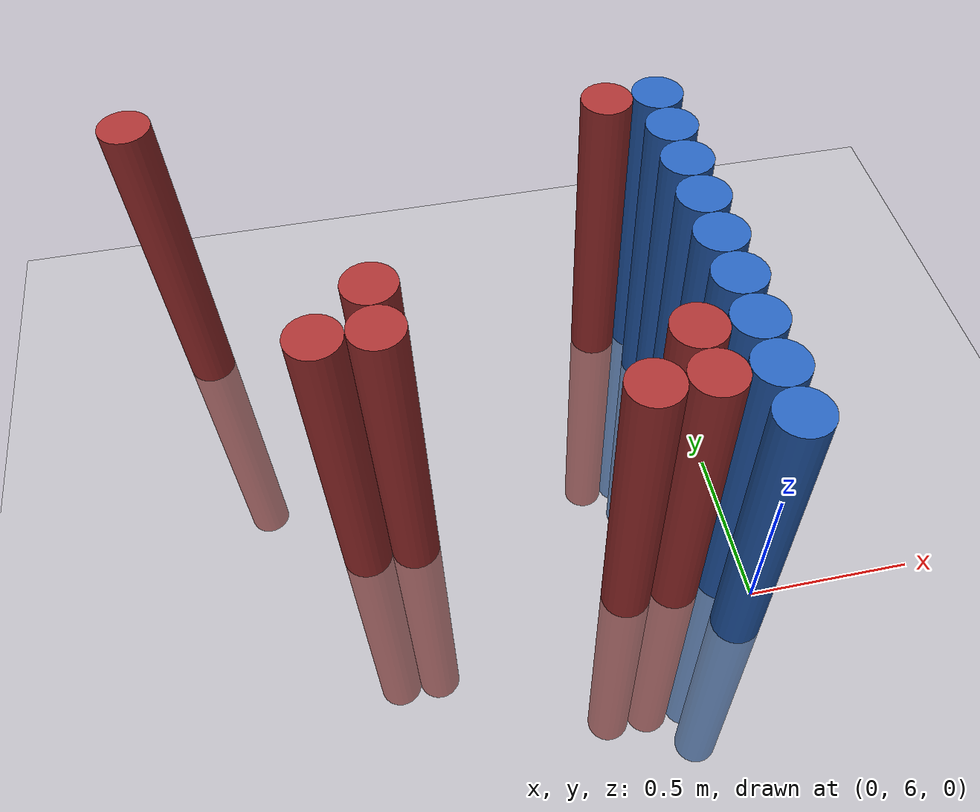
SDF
<sdf version="1.6">
 <world name="default">
  <model name="ground_plane">
   <static>1</static>
   <link name="link">
    <collision name="collision">
     <geometry><plane><normal>0 0 1</normal><size>100 100</size></plane></geometry>
     <surface><friction><ode><mu>100</mu><mu2>50</mu2></ode></friction></surface>
    </collision>
    <visual name="visual">
     <cast_shadows>0</cast_shadows>
     <geometry><plane><normal>0 0 1</normal><size>100 100</size></plane></geometry>
     <material>
      <script><uri>file://media/materials/scripts/gazebo.material</uri><name>Gazebo/Grey</name></script>
     </material>
    </visual>
   </link>
  </model>
  <model name="unit_cylinder_198">
   <static>1</static>
   <pose>-1.575000 7.275000 0.000000 0.000000 0.000000 0.000000</pose>
   <link name="link">
    <inertial>
     <mass>1</mass>
     <inertia><ixx>0.145833</ixx><ixy>0</ixy><ixz>0</ixz><iyy>0.145833</iyy><iyz>0</iyz><izz>0.125</izz></inertia>
    </inertial>
    <collision name="collision">
     <geometry><cylinder><radius>0.075000</radius><length>2</length></cylinder></geometry>
    </collision>
    <visual name="visual">
     <geometry><cylinder><radius>0.075000</radius><length>2</length></cylinder></geometry>
     <material>
      <ambient>0.648000 0.192000 0.192000 1</ambient>
      <diffuse>0.648000 0.192000 0.192000 1</diffuse>
     </material>
     <material>
      <script><name>Gazebo/Grey</name><uri>file://media/materials/scripts/gazebo.material</uri></script>
     </material>
    </visual>
   </link>
  </model>
  <model name="unit_cylinder_207">
   <static>1</static>
   <pose>-1.125000 6.375000 0.000000 0.000000 0.000000 0.000000</pose>
   <link name="link">
    <inertial>
     <mass>1</mass>
     <inertia><ixx>0.145833</ixx><ixy>0</ixy><ixz>0</ixz><iyy>0.145833</iyy><iyz>0</iyz><izz>0.125</izz></inertia>
    </inertial>
    <collision name="collision">
     <geometry><cylinder><radius>0.075000</radius><length>2</length></cylinder></geometry>
    </collision>
    <visual name="visual">
     <geometry><cylinder><radius>0.075000</radius><length>2</length></cylinder></geometry>
     <material>
      <ambient>0.648000 0.192000 0.192000 1</ambient>
      <diffuse>0.648000 0.192000 0.192000 1</diffuse>
     </material>
     <material>
      <script><name>Gazebo/Grey</name><uri>file://media/materials/scripts/gazebo.material</uri></script>
     </material>
    </visual>
   </link>
  </model>
  <model name="unit_cylinder_211">
   <static>1</static>
   <pose>-0.975000 6.375000 0.000000 0.000000 0.000000 0.000000</pose>
   <link name="link">
    <inertial>
     <mass>1</mass>
     <inertia><ixx>0.145833</ixx><ixy>0</ixy><ixz>0</ixz><iyy>0.145833</iyy><iyz>0</iyz><izz>0.125</izz></inertia>
    </inertial>
    <collision name="collision">
     <geometry><cylinder><radius>0.075000</radius><length>2</length></cylinder></geometry>
    </collision>
    <visual name="visual">
     <geometry><cylinder><radius>0.075000</radius><length>2</length></cylinder></geometry>
     <material>
      <ambient>0.648000 0.192000 0.192000 1</ambient>
      <diffuse>0.648000 0.192000 0.192000 1</diffuse>
     </material>
     <material>
      <script><name>Gazebo/Grey</name><uri>file://media/materials/scripts/gazebo.material</uri></script>
     </material>
    </visual>
   </link>
  </model>
  <model name="unit_cylinder_212">
   <static>1</static>
   <pose>-0.975000 6.525000 0.000000 0.000000 0.000000 0.000000</pose>
   <link name="link">
    <inertial>
     <mass>1</mass>
     <inertia><ixx>0.145833</ixx><ixy>0</ixy><ixz>0</ixz><iyy>0.145833</iyy><iyz>0</iyz><izz>0.125</izz></inertia>
    </inertial>
    <collision name="collision">
     <geometry><cylinder><radius>0.075000</radius><length>2</length></cylinder></geometry>
    </collision>
    <visual name="visual">
     <geometry><cylinder><radius>0.075000</radius><length>2</length></cylinder></geometry>
     <material>
      <ambient>0.648000 0.192000 0.192000 1</ambient>
      <diffuse>0.648000 0.192000 0.192000 1</diffuse>
     </material>
     <material>
      <script><name>Gazebo/Grey</name><uri>file://media/materials/scripts/gazebo.material</uri></script>
     </material>
    </visual>
   </link>
  </model>
  <model name="unit_cylinder_227">
   <static>1</static>
   <pose>-0.375000 6.075000 0.000000 0.000000 0.000000 0.000000</pose>
   <link name="link">
    <inertial>
     <mass>1</mass>
     <inertia><ixx>0.145833</ixx><ixy>0</ixy><ixz>0</ixz><iyy>0.145833</iyy><iyz>0</iyz><izz>0.125</izz></inertia>
    </inertial>
    <collision name="collision">
     <geometry><cylinder><radius>0.075000</radius><length>2</length></cylinder></geometry>
    </collision>
    <visual name="visual">
     <geometry><cylinder><radius>0.075000</radius><length>2</length></cylinder></geometry>
     <material>
      <ambient>0.648000 0.192000 0.192000 1</ambient>
      <diffuse>0.648000 0.192000 0.192000 1</diffuse>
     </material>
     <material>
      <script><name>Gazebo/Grey</name><uri>file://media/materials/scripts/gazebo.material</uri></script>
     </material>
    </visual>
   </link>
  </model>
  <model name="unit_cylinder_232">
   <static>1</static>
   <pose>-0.225000 6.075000 0.000000 0.000000 0.000000 0.000000</pose>
   <link name="link">
    <inertial>
     <mass>1</mass>
     <inertia><ixx>0.145833</ixx><ixy>0</ixy><ixz>0</ixz><iyy>0.145833</iyy><iyz>0</iyz><izz>0.125</izz></inertia>
    </inertial>
    <collision name="collision">
     <geometry><cylinder><radius>0.075000</radius><length>2</length></cylinder></geometry>
    </collision>
    <visual name="visual">
     <geometry><cylinder><radius>0.075000</radius><length>2</length></cylinder></geometry>
     <material>
      <ambient>0.648000 0.192000 0.192000 1</ambient>
      <diffuse>0.648000 0.192000 0.192000 1</diffuse>
     </material>
     <material>
      <script><name>Gazebo/Grey</name><uri>file://media/materials/scripts/gazebo.material</uri></script>
     </material>
    </visual>
   </link>
  </model>
  <model name="unit_cylinder_233">
   <static>1</static>
   <pose>-0.225000 6.225000 0.000000 0.000000 0.000000 0.000000</pose>
   <link name="link">
    <inertial>
     <mass>1</mass>
     <inertia><ixx>0.145833</ixx><ixy>0</ixy><ixz>0</ixz><iyy>0.145833</iyy><iyz>0</iyz><izz>0.125</izz></inertia>
    </inertial>
    <collision name="collision">
     <geometry><cylinder><radius>0.075000</radius><length>2</length></cylinder></geometry>
    </collision>
    <visual name="visual">
     <geometry><cylinder><radius>0.075000</radius><length>2</length></cylinder></geometry>
     <material>
      <ambient>0.648000 0.192000 0.192000 1</ambient>
      <diffuse>0.648000 0.192000 0.192000 1</diffuse>
     </material>
     <material>
      <script><name>Gazebo/Grey</name><uri>file://media/materials/scripts/gazebo.material</uri></script>
     </material>
    </visual>
   </link>
  </model>
  <model name="unit_cylinder_234">
   <static>1</static>
   <pose>-0.225000 7.125000 0.000000 0.000000 0.000000 0.000000</pose>
   <link name="link">
    <inertial>
     <mass>1</mass>
     <inertia><ixx>0.145833</ixx><ixy>0</ixy><ixz>0</ixz><iyy>0.145833</iyy><iyz>0</iyz><izz>0.125</izz></inertia>
    </inertial>
    <collision name="collision">
     <geometry><cylinder><radius>0.075000</radius><length>2</length></cylinder></geometry>
    </collision>
    <visual name="visual">
     <geometry><cylinder><radius>0.075000</radius><length>2</length></cylinder></geometry>
     <material>
      <ambient>0.648000 0.192000 0.192000 1</ambient>
      <diffuse>0.648000 0.192000 0.192000 1</diffuse>
     </material>
     <material>
      <script><name>Gazebo/Grey</name><uri>file://media/materials/scripts/gazebo.material</uri></script>
     </material>
    </visual>
   </link>
  </model>
  <model name="unit_cylinder_247">
   <static>1</static>
   <pose>-0.075000 5.925000 0.000000 0.000000 0.000000 0.000000</pose>
   <link name="link">
    <inertial>
     <mass>1</mass>
     <inertia><ixx>0.145833</ixx><ixy>0</ixy><ixz>0</ixz><iyy>0.145833</iyy><iyz>0</iyz><izz>0.125</izz></inertia>
    </inertial>
    <collision name="collision">
     <geometry><cylinder><radius>0.075000</radius><length>2</length></cylinder></geometry>
    </collision>
    <visual name="visual">
     <geometry><cylinder><radius>0.075000</radius><length>2</length></cylinder></geometry>
     <material>
      <ambient>0.152000 0.379000 0.720000 1</ambient>
      <diffuse>0.152000 0.379000 0.720000 1</diffuse>
     </material>
     <material>
      <script><name>Gazebo/Grey</name><uri>file://media/materials/scripts/gazebo.material</uri></script>
     </material>
    </visual>
   </link>
  </model>
  <model name="unit_cylinder_248">
   <static>1</static>
   <pose>-0.075000 6.075000 0.000000 0.000000 0.000000 0.000000</pose>
   <link name="link">
    <inertial>
     <mass>1</mass>
     <inertia><ixx>0.145833</ixx><ixy>0</ixy><ixz>0</ixz><iyy>0.145833</iyy><iyz>0</iyz><izz>0.125</izz></inertia>
    </inertial>
    <collision name="collision">
     <geometry><cylinder><radius>0.075000</radius><length>2</length></cylinder></geometry>
    </collision>
    <visual name="visual">
     <geometry><cylinder><radius>0.075000</radius><length>2</length></cylinder></geometry>
     <material>
      <ambient>0.152000 0.379000 0.720000 1</ambient>
      <diffuse>0.152000 0.379000 0.720000 1</diffuse>
     </material>
     <material>
      <script><name>Gazebo/Grey</name><uri>file://media/materials/scripts/gazebo.material</uri></script>
     </material>
    </visual>
   </link>
  </model>
  <model name="unit_cylinder_249">
   <static>1</static>
   <pose>-0.075000 6.225000 0.000000 0.000000 0.000000 0.000000</pose>
   <link name="link">
    <inertial>
     <mass>1</mass>
     <inertia><ixx>0.145833</ixx><ixy>0</ixy><ixz>0</ixz><iyy>0.145833</iyy><iyz>0</iyz><izz>0.125</izz></inertia>
    </inertial>
    <collision name="collision">
     <geometry><cylinder><radius>0.075000</radius><length>2</length></cylinder></geometry>
    </collision>
    <visual name="visual">
     <geometry><cylinder><radius>0.075000</radius><length>2</length></cylinder></geometry>
     <material>
      <ambient>0.152000 0.379000 0.720000 1</ambient>
      <diffuse>0.152000 0.379000 0.720000 1</diffuse>
     </material>
     <material>
      <script><name>Gazebo/Grey</name><uri>file://media/materials/scripts/gazebo.material</uri></script>
     </material>
    </visual>
   </link>
  </model>
  <model name="unit_cylinder_250">
   <static>1</static>
   <pose>-0.075000 6.375000 0.000000 0.000000 0.000000 0.000000</pose>
   <link name="link">
    <inertial>
     <mass>1</mass>
     <inertia><ixx>0.145833</ixx><ixy>0</ixy><ixz>0</ixz><iyy>0.145833</iyy><iyz>0</iyz><izz>0.125</izz></inertia>
    </inertial>
    <collision name="collision">
     <geometry><cylinder><radius>0.075000</radius><length>2</length></cylinder></geometry>
    </collision>
    <visual name="visual">
     <geometry><cylinder><radius>0.075000</radius><length>2</length></cylinder></geometry>
     <material>
      <ambient>0.152000 0.379000 0.720000 1</ambient>
      <diffuse>0.152000 0.379000 0.720000 1</diffuse>
     </material>
     <material>
      <script><name>Gazebo/Grey</name><uri>file://media/materials/scripts/gazebo.material</uri></script>
     </material>
    </visual>
   </link>
  </model>
  <model name="unit_cylinder_251">
   <static>1</static>
   <pose>-0.075000 6.525000 0.000000 0.000000 0.000000 0.000000</pose>
   <link name="link">
    <inertial>
     <mass>1</mass>
     <inertia><ixx>0.145833</ixx><ixy>0</ixy><ixz>0</ixz><iyy>0.145833</iyy><iyz>0</iyz><izz>0.125</izz></inertia>
    </inertial>
    <collision name="collision">
     <geometry><cylinder><radius>0.075000</radius><length>2</length></cylinder></geometry>
    </collision>
    <visual name="visual">
     <geometry><cylinder><radius>0.075000</radius><length>2</length></cylinder></geometry>
     <material>
      <ambient>0.152000 0.379000 0.720000 1</ambient>
      <diffuse>0.152000 0.379000 0.720000 1</diffuse>
     </material>
     <material>
      <script><name>Gazebo/Grey</name><uri>file://media/materials/scripts/gazebo.material</uri></script>
     </material>
    </visual>
   </link>
  </model>
  <model name="unit_cylinder_252">
   <static>1</static>
   <pose>-0.075000 6.675000 0.000000 0.000000 0.000000 0.000000</pose>
   <link name="link">
    <inertial>
     <mass>1</mass>
     <inertia><ixx>0.145833</ixx><ixy>0</ixy><ixz>0</ixz><iyy>0.145833</iyy><iyz>0</iyz><izz>0.125</izz></inertia>
    </inertial>
    <collision name="collision">
     <geometry><cylinder><radius>0.075000</radius><length>2</length></cylinder></geometry>
    </collision>
    <visual name="visual">
     <geometry><cylinder><radius>0.075000</radius><length>2</length></cylinder></geometry>
     <material>
      <ambient>0.152000 0.379000 0.720000 1</ambient>
      <diffuse>0.152000 0.379000 0.720000 1</diffuse>
     </material>
     <material>
      <script><name>Gazebo/Grey</name><uri>file://media/materials/scripts/gazebo.material</uri></script>
     </material>
    </visual>
   </link>
  </model>
  <model name="unit_cylinder_253">
   <static>1</static>
   <pose>-0.075000 6.825000 0.000000 0.000000 0.000000 0.000000</pose>
   <link name="link">
    <inertial>
     <mass>1</mass>
     <inertia><ixx>0.145833</ixx><ixy>0</ixy><ixz>0</ixz><iyy>0.145833</iyy><iyz>0</iyz><izz>0.125</izz></inertia>
    </inertial>
    <collision name="collision">
     <geometry><cylinder><radius>0.075000</radius><length>2</length></cylinder></geometry>
    </collision>
    <visual name="visual">
     <geometry><cylinder><radius>0.075000</radius><length>2</length></cylinder></geometry>
     <material>
      <ambient>0.152000 0.379000 0.720000 1</ambient>
      <diffuse>0.152000 0.379000 0.720000 1</diffuse>
     </material>
     <material>
      <script><name>Gazebo/Grey</name><uri>file://media/materials/scripts/gazebo.material</uri></script>
     </material>
    </visual>
   </link>
  </model>
  <model name="unit_cylinder_254">
   <static>1</static>
   <pose>-0.075000 6.975000 0.000000 0.000000 0.000000 0.000000</pose>
   <link name="link">
    <inertial>
     <mass>1</mass>
     <inertia><ixx>0.145833</ixx><ixy>0</ixy><ixz>0</ixz><iyy>0.145833</iyy><iyz>0</iyz><izz>0.125</izz></inertia>
    </inertial>
    <collision name="collision">
     <geometry><cylinder><radius>0.075000</radius><length>2</length></cylinder></geometry>
    </collision>
    <visual name="visual">
     <geometry><cylinder><radius>0.075000</radius><length>2</length></cylinder></geometry>
     <material>
      <ambient>0.152000 0.379000 0.720000 1</ambient>
      <diffuse>0.152000 0.379000 0.720000 1</diffuse>
     </material>
     <material>
      <script><name>Gazebo/Grey</name><uri>file://media/materials/scripts/gazebo.material</uri></script>
     </material>
    </visual>
   </link>
  </model>
  <model name="unit_cylinder_255">
   <static>1</static>
   <pose>-0.075000 7.125000 0.000000 0.000000 0.000000 0.000000</pose>
   <link name="link">
    <inertial>
     <mass>1</mass>
     <inertia><ixx>0.145833</ixx><ixy>0</ixy><ixz>0</ixz><iyy>0.145833</iyy><iyz>0</iyz><izz>0.125</izz></inertia>
    </inertial>
    <collision name="collision">
     <geometry><cylinder><radius>0.075000</radius><length>2</length></cylinder></geometry>
    </collision>
    <visual name="visual">
     <geometry><cylinder><radius>0.075000</radius><length>2</length></cylinder></geometry>
     <material>
      <ambient>0.152000 0.379000 0.720000 1</ambient>
      <diffuse>0.152000 0.379000 0.720000 1</diffuse>
     </material>
     <material>
      <script><name>Gazebo/Grey</name><uri>file://media/materials/scripts/gazebo.material</uri></script>
     </material>
    </visual>
   </link>
  </model>
 </world>
</sdf>
